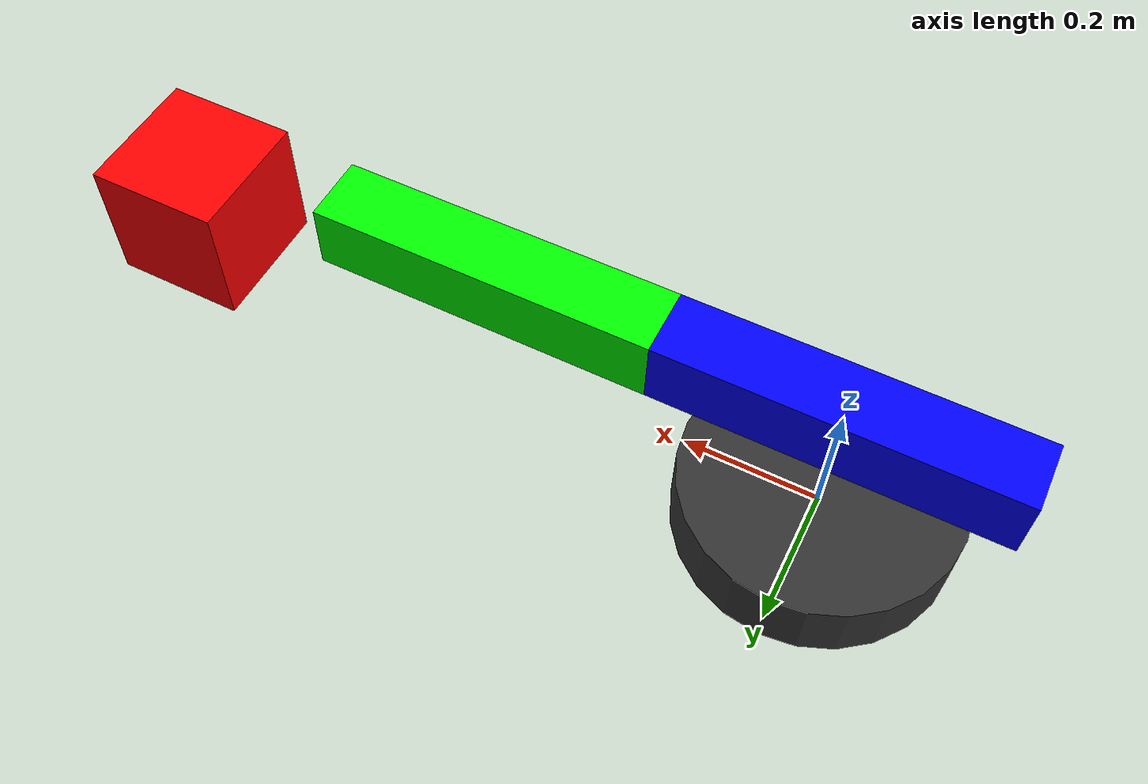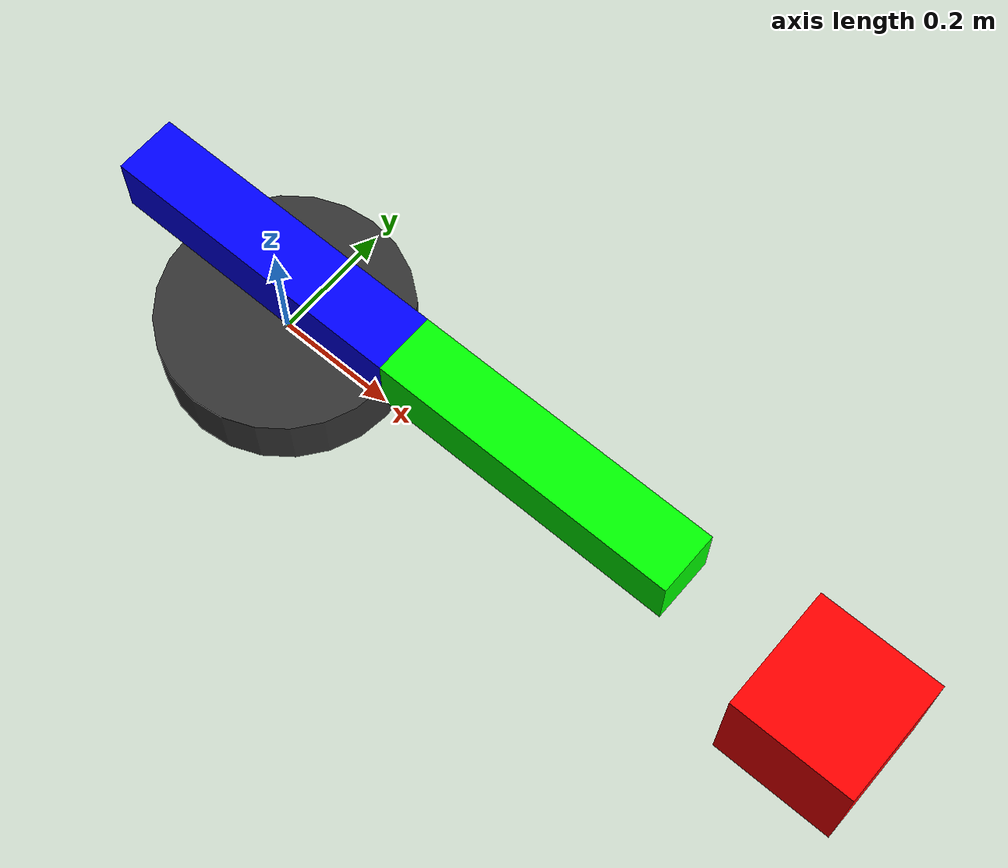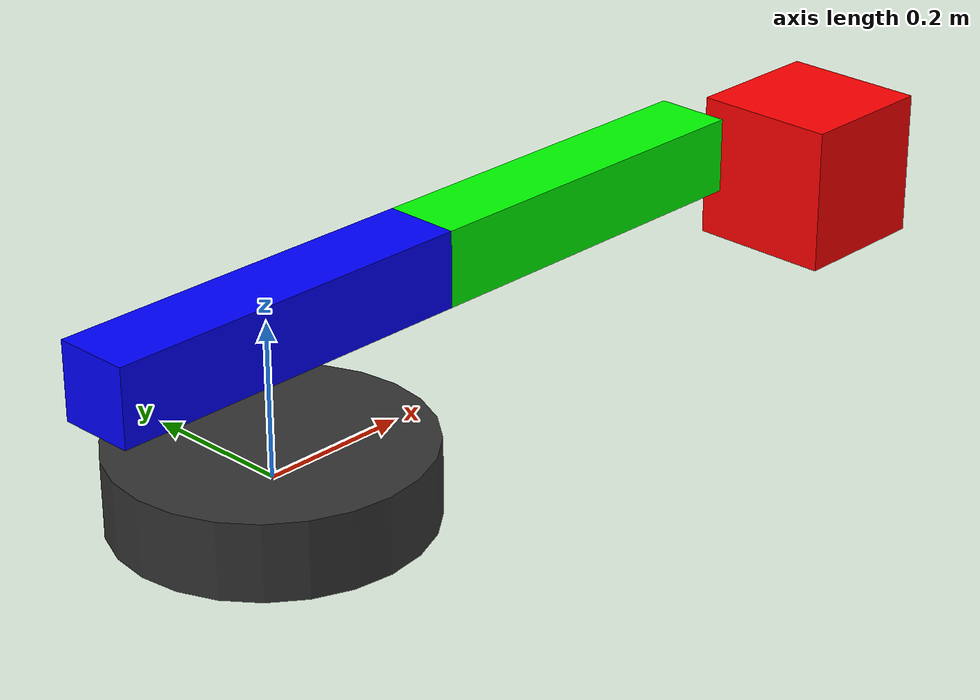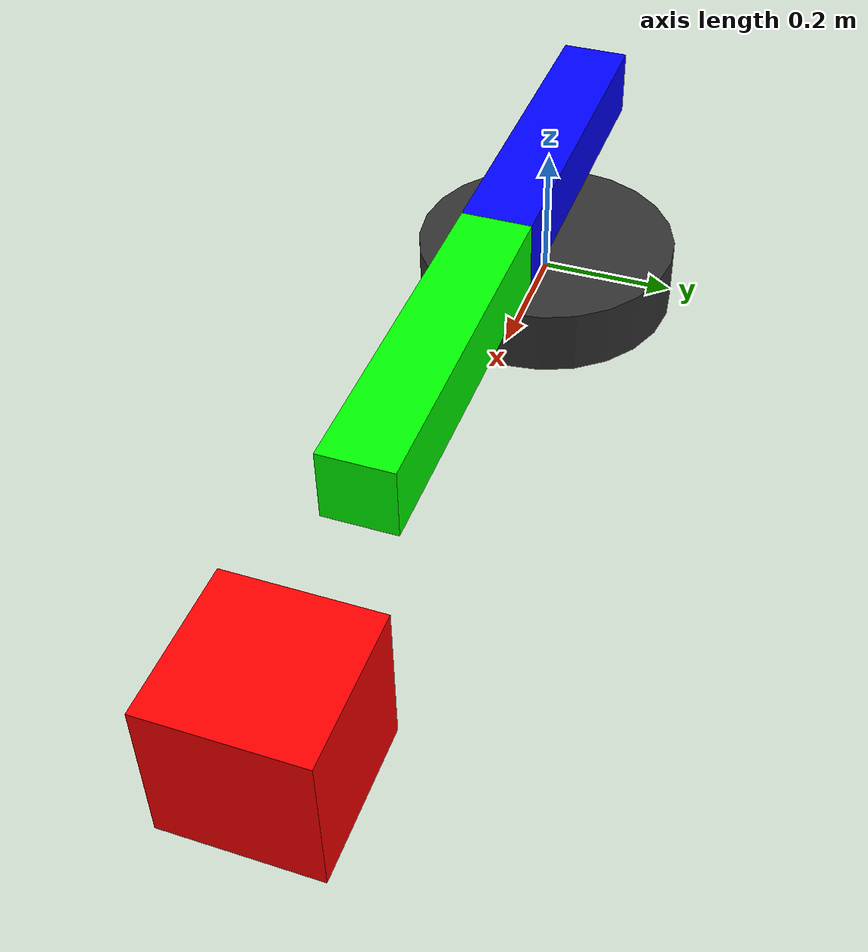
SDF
<sdf version="1.9">
  <world name="default">

    <!-- Bras manipulateur simplifié -->
    <model name="manipulator">
      <pose>0 0 0 0 0 0</pose>
      <link name="base">
        <visual name="base_visual">
          <geometry>
            <cylinder>
              <radius>0.2</radius>
              <length>0.1</length>
            </cylinder>
          </geometry>
          <material>
            <ambient>0.2 0.2 0.2 1</ambient>
            <diffuse>0.2 0.2 0.2 1</diffuse>
          </material>
        </visual>
      </link>

      <!-- Premier segment -->
      <link name="link1">
        <pose>0 0 0.2 0 0 0</pose>
        <visual name="link1_visual">
          <geometry>
            <box>
              <size>0.5 0.1 0.1</size>
            </box>
          </geometry>
          <material>
            <ambient>0 0 1 1</ambient>
            <diffuse>0 0 1 1</diffuse>
          </material>
        </visual>
      </link>

      <!-- Deuxième segment -->
      <link name="link2">
        <pose>0.5 0 0.2 0 0 0</pose>
        <visual name="link2_visual">
          <geometry>
            <box>
              <size>0.5 0.1 0.1</size>
            </box>
          </geometry>
          <material>
            <ambient>0 1 0 1</ambient>
            <diffuse>0 1 0 1</diffuse>
          </material>
        </visual>
      </link>
    </model>

    <!-- Objet à saisir -->
    <model name="box">
      <pose>1 0 0.1 0 0 0</pose>
      <link name="link">
        <visual name="box_visual">
          <geometry>
            <box>
              <size>0.2 0.2 0.2</size>
            </box>
          </geometry>
          <material>
            <ambient>1 0 0 1</ambient>
            <diffuse>1 0 0 1</diffuse>
          </material>
        </visual>
      </link>
    </model>

  </world>
</sdf>
